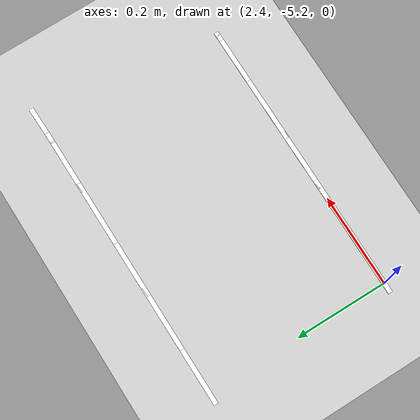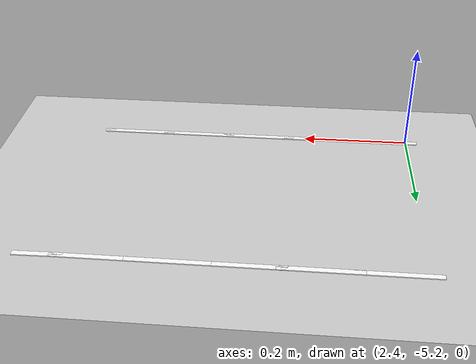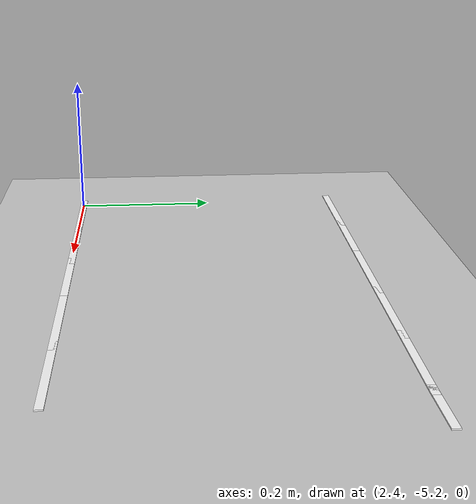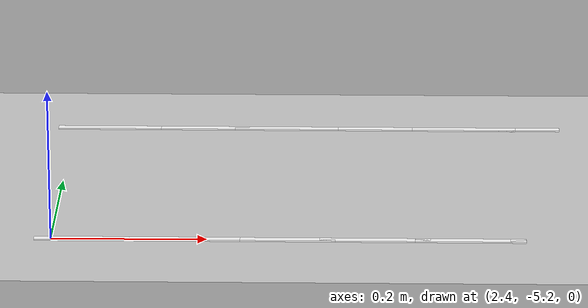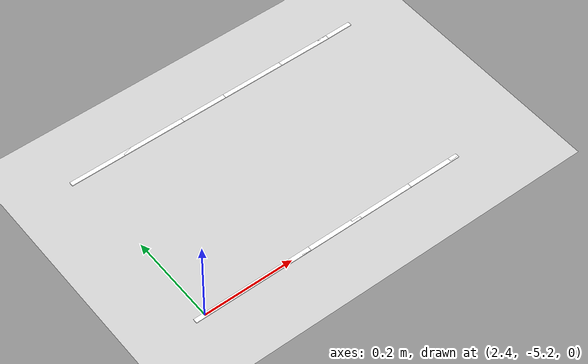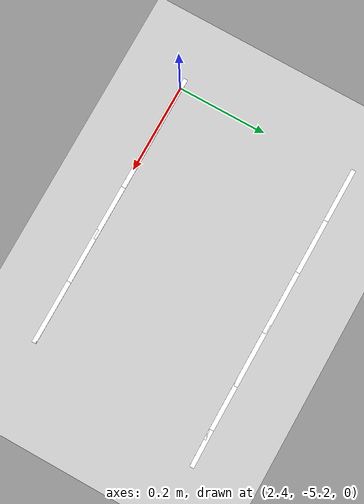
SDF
<sdf version="1.7">
 <world name="default">
  <model name="ground_plane">
   <static>1</static>
   <link name="link">
    <collision name="collision">
     <geometry><plane><normal>0 0 1</normal><size>100 100</size></plane></geometry>
     <surface>
      <contact><collide_bitmask>65535</collide_bitmask></contact>
      <friction><ode><mu>100</mu><mu2>50</mu2></ode></friction>
     </surface>
    </collision>
    <visual name="visual">
     <cast_shadows>0</cast_shadows>
     <geometry><plane><normal>0 0 1</normal><size>100 100</size></plane></geometry>
     <material>
      <script><uri>file://media/materials/scripts/gazebo.material</uri><name>Gazebo/Grey</name></script>
     </material>
    </visual>
   </link>
  </model>
  <model name="lane_line_left_44">
   <static>1</static>
   <link name="link">
    <pose>0 0 -0.004 0 -0 0</pose>
    <visual name="visual">
     <geometry><box><size>0.1424 0.01 0.01</size></box></geometry>
     <material><ambient>1 1 1 1</ambient><diffuse>1 1 1 1</diffuse></material>
    </visual>
    <collision name="collision"><geometry><box><size>0.1424 0.01 0.01</size></box></geometry></collision>
   </link>
   <pose>2.44898 -4.8 0 0 -0 0</pose>
  </model>
  <model name="lane_line_right_44">
   <static>1</static>
   <link name="link">
    <pose>0 0 -0.004 0 -0 0</pose>
    <visual name="visual">
     <geometry><box><size>0.1424 0.01 0.01</size></box></geometry>
     <material><ambient>1 1 1 1</ambient><diffuse>1 1 1 1</diffuse></material>
    </visual>
    <collision name="collision"><geometry><box><size>0.1424 0.01 0.01</size></box></geometry></collision>
   </link>
   <pose>2.44898 -5.2 0 0 -0 0</pose>
  </model>
  <model name="lane_line_left_45">
   <static>1</static>
   <link name="link">
    <pose>0 0 -0.004 0 -0 0</pose>
    <visual name="visual">
     <geometry><box><size>0.1424 0.01 0.01</size></box></geometry>
     <material><ambient>1 1 1 1</ambient><diffuse>1 1 1 1</diffuse></material>
    </visual>
    <collision name="collision"><geometry><box><size>0.1424 0.01 0.01</size></box></geometry></collision>
   </link>
   <pose>2.57143 -4.8 0 0 -0 0</pose>
  </model>
  <model name="lane_line_right_45">
   <static>1</static>
   <link name="link">
    <pose>0 0 -0.004 0 -0 0</pose>
    <visual name="visual">
     <geometry><box><size>0.1424 0.01 0.01</size></box></geometry>
     <material><ambient>1 1 1 1</ambient><diffuse>1 1 1 1</diffuse></material>
    </visual>
    <collision name="collision"><geometry><box><size>0.1424 0.01 0.01</size></box></geometry></collision>
   </link>
   <pose>2.57143 -5.2 0 0 -0 0</pose>
  </model>
  <model name="lane_line_left_46">
   <static>1</static>
   <link name="link">
    <pose>0 0 -0.004 0 -0 0</pose>
    <visual name="visual">
     <geometry><box><size>0.1424 0.01 0.01</size></box></geometry>
     <material><ambient>1 1 1 1</ambient><diffuse>1 1 1 1</diffuse></material>
    </visual>
    <collision name="collision"><geometry><box><size>0.1424 0.01 0.01</size></box></geometry></collision>
   </link>
   <pose>2.69388 -4.8 0 0 -0 0</pose>
  </model>
  <model name="lane_line_right_46">
   <static>1</static>
   <link name="link">
    <pose>0 0 -0.004 0 -0 0</pose>
    <visual name="visual">
     <geometry><box><size>0.1424 0.01 0.01</size></box></geometry>
     <material><ambient>1 1 1 1</ambient><diffuse>1 1 1 1</diffuse></material>
    </visual>
    <collision name="collision"><geometry><box><size>0.1424 0.01 0.01</size></box></geometry></collision>
   </link>
   <pose>2.69388 -5.2 0 0 -0 0</pose>
  </model>
  <model name="lane_line_left_47">
   <static>1</static>
   <link name="link">
    <pose>0 0 -0.004 0 -0 0</pose>
    <visual name="visual">
     <geometry><box><size>0.1424 0.01 0.01</size></box></geometry>
     <material><ambient>1 1 1 1</ambient><diffuse>1 1 1 1</diffuse></material>
    </visual>
    <collision name="collision"><geometry><box><size>0.1424 0.01 0.01</size></box></geometry></collision>
   </link>
   <pose>2.81633 -4.8 0 0 -0 0</pose>
  </model>
  <model name="lane_line_right_47">
   <static>1</static>
   <link name="link">
    <pose>0 0 -0.004 0 -0 0</pose>
    <visual name="visual">
     <geometry><box><size>0.1424 0.01 0.01</size></box></geometry>
     <material><ambient>1 1 1 1</ambient><diffuse>1 1 1 1</diffuse></material>
    </visual>
    <collision name="collision"><geometry><box><size>0.1424 0.01 0.01</size></box></geometry></collision>
   </link>
   <pose>2.81633 -5.2 0 0 -0 0</pose>
  </model>
  <model name="lane_line_left_48">
   <static>1</static>
   <link name="link">
    <pose>0 0 -0.004 0 -0 0</pose>
    <visual name="visual">
     <geometry><box><size>0.1424 0.01 0.01</size></box></geometry>
     <material><ambient>1 1 1 1</ambient><diffuse>1 1 1 1</diffuse></material>
    </visual>
    <collision name="collision"><geometry><box><size>0.1424 0.01 0.01</size></box></geometry></collision>
   </link>
   <pose>2.93878 -4.8 0 0 -0 0</pose>
  </model>
  <model name="lane_line_right_48">
   <static>1</static>
   <link name="link">
    <pose>0 0 -0.004 0 -0 0</pose>
    <visual name="visual">
     <geometry><box><size>0.1424 0.01 0.01</size></box></geometry>
     <material><ambient>1 1 1 1</ambient><diffuse>1 1 1 1</diffuse></material>
    </visual>
    <collision name="collision"><geometry><box><size>0.1424 0.01 0.01</size></box></geometry></collision>
   </link>
   <pose>2.93878 -5.2 0 0 -0 0</pose>
  </model>
  <model name="lane_line_left_49">
   <static>1</static>
   <link name="link">
    <pose>0 0 -0.004 0 -0 0</pose>
    <visual name="visual">
     <geometry><box><size>0.02 0.01 0.01</size></box></geometry>
     <material><ambient>1 1 1 1</ambient><diffuse>1 1 1 1</diffuse></material>
    </visual>
    <collision name="collision"><geometry><box><size>0.02 0.01 0.01</size></box></geometry></collision>
   </link>
   <pose>3 -4.8 0 0 -0 0</pose>
  </model>
  <model name="lane_line_right_49">
   <static>1</static>
   <link name="link">
    <pose>0 0 -0.004 0 -0 0</pose>
    <visual name="visual">
     <geometry><box><size>0.02 0.01 0.01</size></box></geometry>
     <material><ambient>1 1 1 1</ambient><diffuse>1 1 1 1</diffuse></material>
    </visual>
    <collision name="collision"><geometry><box><size>0.02 0.01 0.01</size></box></geometry></collision>
   </link>
   <pose>3 -5.2 0 0 -0 0</pose>
  </model>
  <model name="lane_line_left_50">
   <static>1</static>
   <link name="link">
    <pose>0 0 -0.004 0 -0 0</pose>
    <visual name="visual">
     <geometry><box><size>0.0841 0.01 0.01</size></box></geometry>
     <material><ambient>1 1 1 1</ambient><diffuse>1 1 1 1</diffuse></material>
    </visual>
    <collision name="collision"><geometry><box><size>0.0841 0.01 0.01</size></box></geometry></collision>
   </link>
   <pose>3.02885 -4.79951 0 0 -0 0.016029</pose>
  </model>
 </world>
</sdf>
